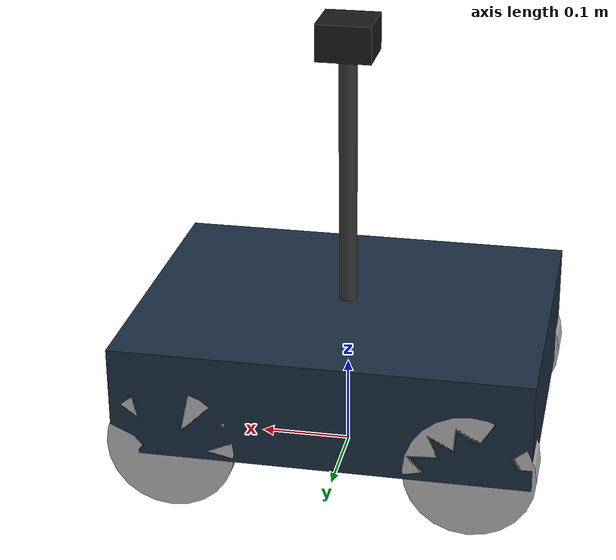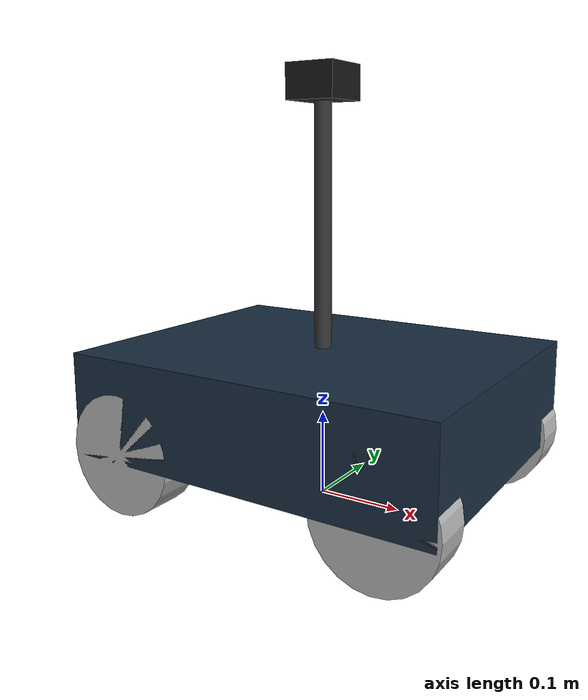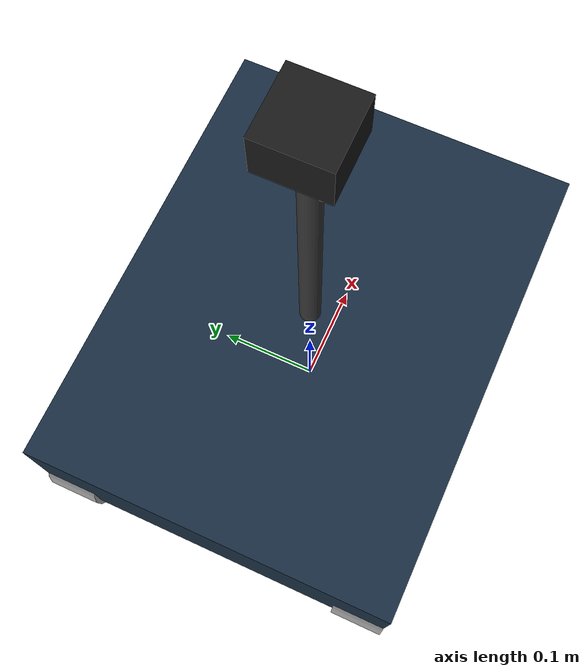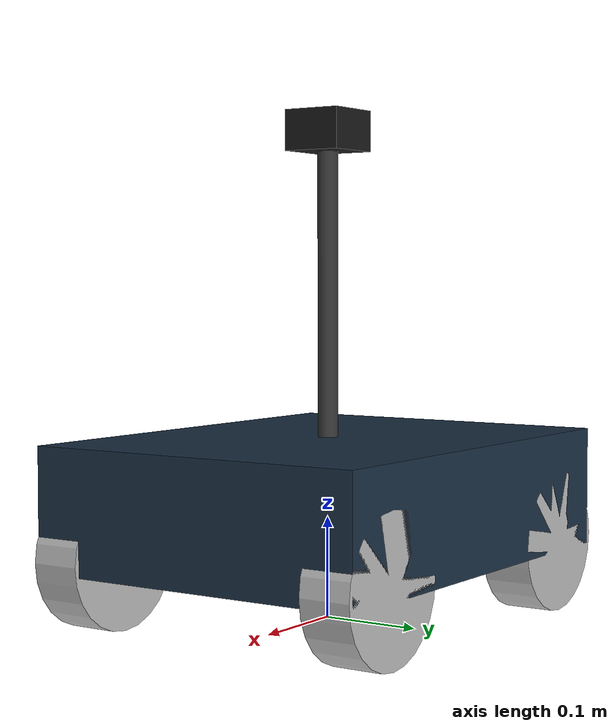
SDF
<?xml version="1.0" ?>
<sdf version="1.9">
  <model name="diff_robot">
    <static>false</static>
    <pose>0 0 0 0 0 0</pose>

    <!-- ================== КОРПУС ================== -->
    <link name="base_link">
      <pose>0 0 0.12 0 0 0</pose>
      <inertial>
        <mass>12.0</mass>
        <inertia>
          <ixx>0.18</ixx><ixy>0</ixy><ixz>0</ixz>
          <iyy>0.24</iyy><iyz>0</iyz>
          <izz>0.30</izz>
        </inertia>
      </inertial>
      <visual name="base_vis">
        <geometry>
          <box><size>0.45 0.35 0.12</size></box>
        </geometry>
        <material>
          <ambient>0.08 0.12 0.18 1</ambient>
          <diffuse>0.10 0.18 0.26 1</diffuse>
        </material>
      </visual>
      <collision name="base_col">
        <geometry>
          <box><size>0.45 0.35 0.12</size></box>
        </geometry>
      </collision>
    </link>

    <!-- ================== КОЛЁСА ================== -->
    <link name="wheel_fl">
      <pose>0.16 0.15 0.07 1.57079632679 0 0</pose>
      <inertial>
        <mass>0.6</mass>
        <inertia>
          <ixx>0.0012</ixx><ixy>0</ixy><ixz>0</ixz>
          <iyy>0.0006</iyy><iyz>0</iyz>
          <izz>0.0012</izz>
        </inertia>
      </inertial>
      <visual name="vis">
        <geometry>
          <cylinder><radius>0.07</radius><length>0.05</length></cylinder>
        </geometry>
      </visual>
      <collision name="col">
        <geometry>
          <cylinder><radius>0.07</radius><length>0.05</length></cylinder>
        </geometry>
        <surface>
          <friction>
            <ode>
              <mu>1.8</mu>
              <mu2>1.8</mu2>
              <slip1>0.02</slip1>
              <slip2>0.02</slip2>
            </ode>
          </friction>
        </surface>
      </collision>
    </link>
    <joint name="wheel_fl_joint" type="revolute">
      <parent>base_link</parent>
      <child>wheel_fl</child>
      <axis>
        <xyz expressed_in="wheel_fl">0 0 1</xyz>
        <limit><lower>-1e16</lower><upper>1e16</upper></limit>
      </axis>
    </joint>

    <link name="wheel_fr">
      <pose>0.16 -0.15 0.07 1.57079632679 0 0</pose>
      <inertial>
        <mass>0.6</mass>
        <inertia>
          <ixx>0.0012</ixx><ixy>0</ixy><ixz>0</ixz>
          <iyy>0.0006</iyy><iyz>0</iyz>
          <izz>0.0012</izz>
        </inertia>
      </inertial>
      <visual name="vis">
        <geometry>
          <cylinder><radius>0.07</radius><length>0.05</length></cylinder>
        </geometry>
      </visual>
      <collision name="col">
        <geometry>
          <cylinder><radius>0.07</radius><length>0.05</length></cylinder>
        </geometry>
        <surface>
          <friction>
            <ode>
              <mu>1.8</mu>
              <mu2>1.8</mu2>
              <slip1>0.02</slip1>
              <slip2>0.02</slip2>
            </ode>
          </friction>
        </surface>
      </collision>
    </link>
    <joint name="wheel_fr_joint" type="revolute">
      <parent>base_link</parent>
      <child>wheel_fr</child>
      <axis>
        <xyz expressed_in="wheel_fr">0 0 1</xyz>
        <limit><lower>-1e16</lower><upper>1e16</upper></limit>
      </axis>
    </joint>

    <link name="wheel_rl">
      <pose>-0.16 0.15 0.07 1.57079632679 0 0</pose>
      <inertial>
        <mass>0.6</mass>
        <inertia>
          <ixx>0.0012</ixx><ixy>0</ixy><ixz>0</ixz>
          <iyy>0.0006</iyy><iyz>0</iyz>
          <izz>0.0012</izz>
        </inertia>
      </inertial>
      <visual name="vis">
        <geometry>
          <cylinder><radius>0.07</radius><length>0.05</length></cylinder>
        </geometry>
      </visual>
      <collision name="col">
        <geometry>
          <cylinder><radius>0.07</radius><length>0.05</length></cylinder>
        </geometry>
        <surface>
          <friction>
            <ode>
              <mu>1.8</mu>
              <mu2>1.8</mu2>
              <slip1>0.02</slip1>
              <slip2>0.02</slip2>
            </ode>
          </friction>
        </surface>
      </collision>
    </link>
    <joint name="wheel_rl_joint" type="revolute">
      <parent>base_link</parent>
      <child>wheel_rl</child>
      <axis>
        <xyz expressed_in="wheel_rl">0 0 1</xyz>
        <limit><lower>-1e16</lower><upper>1e16</upper></limit>
      </axis>
    </joint>

    <link name="wheel_rr">
      <pose>-0.16 -0.15 0.07 1.57079632679 0 0</pose>
      <inertial>
        <mass>0.6</mass>
        <inertia>
          <ixx>0.0012</ixx><ixy>0</ixy><ixz>0</ixz>
          <iyy>0.0006</iyy><iyz>0</iyz>
          <izz>0.0012</izz>
        </inertia>
      </inertial>
      <visual name="vis">
        <geometry>
          <cylinder><radius>0.07</radius><length>0.05</length></cylinder>
        </geometry>
      </visual>
      <collision name="col">
        <geometry>
          <cylinder><radius>0.07</radius><length>0.05</length></cylinder>
        </geometry>
        <surface>
          <friction>
            <ode>
              <mu>1.8</mu>
              <mu2>1.8</mu2>
              <slip1>0.02</slip1>
              <slip2>0.02</slip2>
            </ode>
          </friction>
        </surface>
      </collision>
    </link>
    <joint name="wheel_rr_joint" type="revolute">
      <parent>base_link</parent>
      <child>wheel_rr</child>
      <axis>
        <xyz expressed_in="wheel_rr">0 0 1</xyz>
        <limit><lower>-1e16</lower><upper>1e16</upper></limit>
      </axis>
    </joint>

    <!-- ================== СЕНСОРНАЯ МАЧТА ================== -->
    <link name="mast_link">
      <pose>0 0 0.30 0 0 0</pose>
      <inertial>
        <mass>0.08</mass>
        <inertia>
          <ixx>0.0004</ixx><ixy>0</ixy><ixz>0</ixz>
          <iyy>0.0004</iyy><iyz>0</iyz>
          <izz>0.0004</izz>
        </inertia>
      </inertial>
      <visual name="mast_vis">
        <geometry>
          <cylinder><radius>0.01</radius><length>0.36</length></cylinder>
        </geometry>
        <material>
          <ambient>0.18 0.18 0.18 1</ambient>
          <diffuse>0.22 0.22 0.22 1</diffuse>
        </material>
      </visual>
      <collision name="mast_col">
        <geometry>
          <cylinder><radius>0.01</radius><length>0.36</length></cylinder>
        </geometry>
      </collision>
    </link>
    <joint name="mast_fixed" type="fixed">
      <parent>base_link</parent>
      <child>mast_link</child>
    </joint>

    <!-- RGB-D камера на верхушке мачты -->
    <link name="camera_link">
      <pose>0 0 0.48 0 0 0</pose>
      <inertial>
        <mass>0.12</mass>
        <inertia>
          <ixx>0.0008</ixx><ixy>0</ixy><ixz>0</ixz>
          <iyy>0.0008</iyy><iyz>0</iyz>
          <izz>0.0008</izz>
        </inertia>
      </inertial>

      <sensor name="rgbd_camera" type="rgbd_camera">
        <pose>0 0 0 0 -1.57079632679 0</pose>
        <always_on>true</always_on>
        <update_rate>15</update_rate>
        <visualize>true</visualize>

        <topic>/camera/color/image</topic>
        <depth_topic>/camera/depth/image</depth_topic>
        <point_cloud_topic>/camera/depth/points</point_cloud_topic>
        <camera_info_topic>/camera/color/camera_info</camera_info_topic>
        <frame_id>camera_link</frame_id>

        <camera>
          <horizontal_fov>1.047</horizontal_fov>
          <image>
            <width>640</width>
            <height>480</height>
            <format>R8G8B8</format>
          </image>
          <clip>
            <near>0.05</near>
            <far>25</far>
          </clip>
        </camera>
      </sensor>

      <visual name="cam_body">
        <geometry>
          <box><size>0.06 0.06 0.04</size></box>
        </geometry>
        <material>
          <ambient>0.08 0.08 0.08 1</ambient>
          <diffuse>0.10 0.10 0.10 1</diffuse>
        </material>
      </visual>
      <collision name="cam_col">
        <geometry>
          <box><size>0.06 0.06 0.04</size></box>
        </geometry>
      </collision>
    </link>
    <joint name="camera_fixed" type="fixed">
      <parent>mast_link</parent>
      <child>camera_link</child>
    </joint>

    <!-- Лидар 2D (GPU Lidar для Harmonic) -->
    <link name="lidar_link">
      <pose>0.18 0 0.34 0 0 0</pose>
      <inertial>
        <mass>0.10</mass>
        <inertia>
          <ixx>0.0002</ixx><ixy>0</ixy><ixz>0</ixz>
          <iyy>0.0002</iyy><iyz>0</iyz>
          <izz>0.0002</izz>
        </inertia>
      </inertial>

      <sensor name="lidar" type="gpu_lidar">
        <pose>0 0 0 0 0 0</pose>
        <always_on>true</always_on>
        <update_rate>15</update_rate>
        <visualize>true</visualize>

        <topic>/scan</topic>
        <frame_id>lidar_link</frame_id>

        <lidar>
          <scan>
            <horizontal>
              <samples>720</samples>
              <resolution>1</resolution>
              <min_angle>-3.14159</min_angle>
              <max_angle>3.14159</max_angle>
            </horizontal>
          </scan>
          <range>
            <min>0.18</min>
            <max>18.0</max>
          </range>
        </lidar>
      </sensor>
    </link>
    <joint name="lidar_joint" type="fixed">
      <parent>base_link</parent>
      <child>lidar_link</child>
    </joint>

    <!-- IMU -->
    <link name="imu_link">
      <pose>0 0 0.20 0 0 0</pose>
      <inertial>
        <mass>0.05</mass>
        <inertia>
          <ixx>0.0001</ixx><ixy>0</ixy><ixz>0</ixz>
          <iyy>0.0001</iyy><iyz>0</iyz>
          <izz>0.0001</izz>
        </inertia>
      </inertial>
      <sensor name="imu" type="imu">
        <always_on>true</always_on>
        <update_rate>100</update_rate>
        <topic>/imu</topic>
        <frame_id>imu_link</frame_id>
      </sensor>
    </link>
    <joint name="imu_fixed" type="fixed">
      <parent>base_link</parent>
      <child>imu_link</child>
    </joint>

    <!-- Plugin: диф. привод -->
    <plugin name="gz::sim::systems::DiffDrive" filename="gz-sim-diff-drive-system">
      <left_joint>wheel_fl_joint</left_joint>
      <left_joint>wheel_rl_joint</left_joint>
      <right_joint>wheel_fr_joint</right_joint>
      <right_joint>wheel_rr_joint</right_joint>
      <wheel_separation>0.30</wheel_separation>
      <wheel_radius>0.07</wheel_radius>
      <odom_publish_frequency>50</odom_publish_frequency>
      <topic>/cmd_vel</topic>
      <odom_topic>/wheel_odom</odom_topic>
      <frame_id>odom</frame_id>
      <child_frame_id>base_footprint</child_frame_id>
      <publish_odom>false</publish_odom>
    </plugin>

    <plugin name="gz::sim::systems::OdometryPublisher"
            filename="gz-sim-odometry-publisher-system">
      <odom_frame>odom</odom_frame>
      <robot_base_frame>base_link</robot_base_frame>
      <dimensions>2</dimensions>
      <odom_topic>/odometry</odom_topic>
      <odom_publish_frequency>50</odom_publish_frequency>
    </plugin>

  </model>
</sdf>
